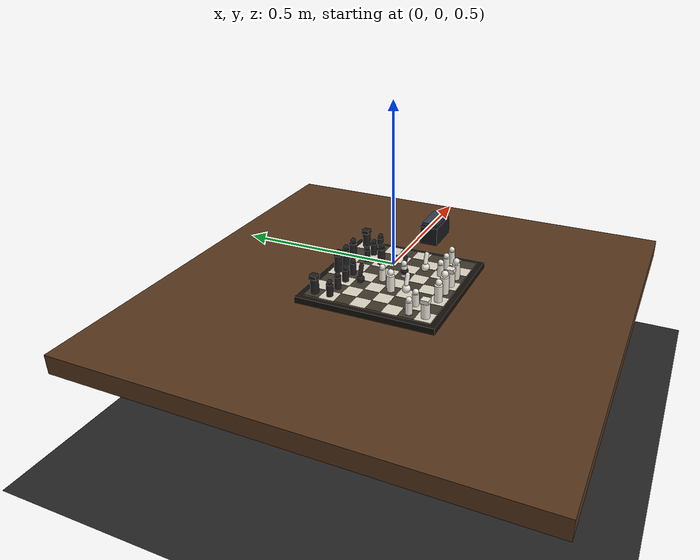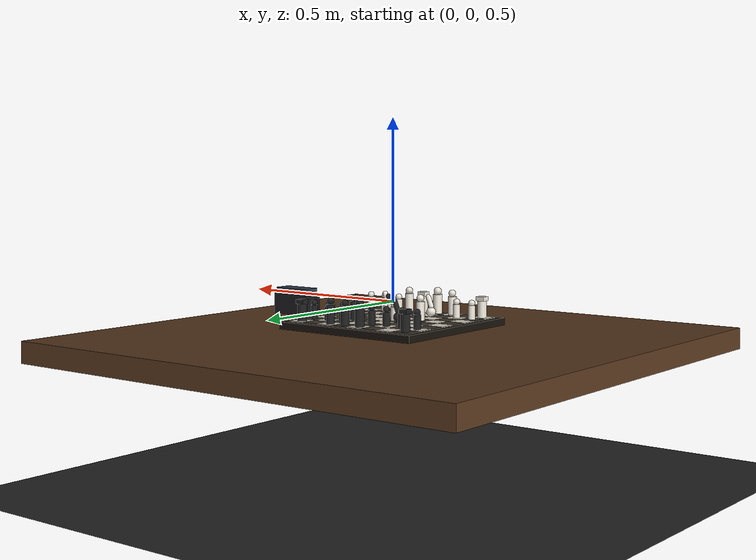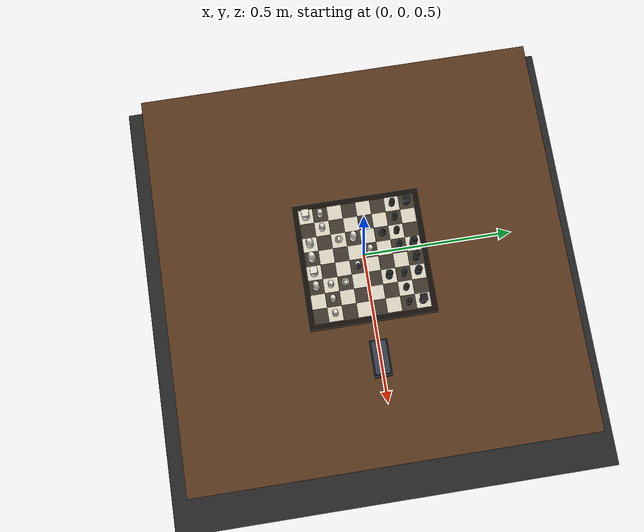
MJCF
<mujoco model="chess_playing_scene">
  <compiler angle="degree" coordinate="local"/>
  <option timestep="0.002" gravity="0 0 -9.81" integrator="RK4"/>

  <asset>
    <!-- No textures/materials per instructions -->
  </asset>

  <worldbody>
    <!-- Lighting -->
    <light name="key_light" pos="0 0 3" dir="0 0 -1" diffuse="0.9 0.9 0.9" specular="0.2 0.2 0.2"/>
    <light name="fill_light" pos="2 2 2" dir="-1 -1 -1" diffuse="0.4 0.4 0.4" specular="0.1 0.1 0.1"/>

    <!-- Table / ground plane -->
    <geom name="floor" type="plane" pos="0 0 0" size="5 5 0.1" rgba="0.15 0.15 0.15 1"/>
    <geom name="table" type="box" pos="0 0 0.38" size="0.7 0.7 0.03" rgba="0.35 0.22 0.12 1"/>

    <!-- Chessboard base -->
    <body name="board" pos="0 0 0.44">
      <geom name="board_base" type="box" pos="0 0 0" size="0.22 0.22 0.01" rgba="0.08 0.06 0.04 1"/>
      <!-- 8x8 squares (each square 0.05 x 0.05; board spans 0.4 x 0.4) -->
      <!-- Coordinates: a1 at (-0.175, -0.175), h8 at (0.175, 0.175) -->
      <!-- Light squares -->
      <geom name="sq_a1" type="box" pos="-0.175 -0.175 0.011" size="0.025 0.025 0.001" rgba="0.88 0.85 0.78 1"/>
      <geom name="sq_c1" type="box" pos="-0.075 -0.175 0.011" size="0.025 0.025 0.001" rgba="0.88 0.85 0.78 1"/>
      <geom name="sq_e1" type="box" pos="0.025 -0.175 0.011" size="0.025 0.025 0.001" rgba="0.88 0.85 0.78 1"/>
      <geom name="sq_g1" type="box" pos="0.125 -0.175 0.011" size="0.025 0.025 0.001" rgba="0.88 0.85 0.78 1"/>

      <geom name="sq_b2" type="box" pos="-0.125 -0.125 0.011" size="0.025 0.025 0.001" rgba="0.88 0.85 0.78 1"/>
      <geom name="sq_d2" type="box" pos="-0.025 -0.125 0.011" size="0.025 0.025 0.001" rgba="0.88 0.85 0.78 1"/>
      <geom name="sq_f2" type="box" pos="0.075 -0.125 0.011" size="0.025 0.025 0.001" rgba="0.88 0.85 0.78 1"/>
      <geom name="sq_h2" type="box" pos="0.175 -0.125 0.011" size="0.025 0.025 0.001" rgba="0.88 0.85 0.78 1"/>

      <geom name="sq_a3" type="box" pos="-0.175 -0.075 0.011" size="0.025 0.025 0.001" rgba="0.88 0.85 0.78 1"/>
      <geom name="sq_c3" type="box" pos="-0.075 -0.075 0.011" size="0.025 0.025 0.001" rgba="0.88 0.85 0.78 1"/>
      <geom name="sq_e3" type="box" pos="0.025 -0.075 0.011" size="0.025 0.025 0.001" rgba="0.88 0.85 0.78 1"/>
      <geom name="sq_g3" type="box" pos="0.125 -0.075 0.011" size="0.025 0.025 0.001" rgba="0.88 0.85 0.78 1"/>

      <geom name="sq_b4" type="box" pos="-0.125 -0.025 0.011" size="0.025 0.025 0.001" rgba="0.88 0.85 0.78 1"/>
      <geom name="sq_d4" type="box" pos="-0.025 -0.025 0.011" size="0.025 0.025 0.001" rgba="0.88 0.85 0.78 1"/>
      <geom name="sq_f4" type="box" pos="0.075 -0.025 0.011" size="0.025 0.025 0.001" rgba="0.88 0.85 0.78 1"/>
      <geom name="sq_h4" type="box" pos="0.175 -0.025 0.011" size="0.025 0.025 0.001" rgba="0.88 0.85 0.78 1"/>

      <geom name="sq_a5" type="box" pos="-0.175 0.025 0.011" size="0.025 0.025 0.001" rgba="0.88 0.85 0.78 1"/>
      <geom name="sq_c5" type="box" pos="-0.075 0.025 0.011" size="0.025 0.025 0.001" rgba="0.88 0.85 0.78 1"/>
      <geom name="sq_e5" type="box" pos="0.025 0.025 0.011" size="0.025 0.025 0.001" rgba="0.88 0.85 0.78 1"/>
      <geom name="sq_g5" type="box" pos="0.125 0.025 0.011" size="0.025 0.025 0.001" rgba="0.88 0.85 0.78 1"/>

      <geom name="sq_b6" type="box" pos="-0.125 0.075 0.011" size="0.025 0.025 0.001" rgba="0.88 0.85 0.78 1"/>
      <geom name="sq_d6" type="box" pos="-0.025 0.075 0.011" size="0.025 0.025 0.001" rgba="0.88 0.85 0.78 1"/>
      <geom name="sq_f6" type="box" pos="0.075 0.075 0.011" size="0.025 0.025 0.001" rgba="0.88 0.85 0.78 1"/>
      <geom name="sq_h6" type="box" pos="0.175 0.075 0.011" size="0.025 0.025 0.001" rgba="0.88 0.85 0.78 1"/>

      <geom name="sq_a7" type="box" pos="-0.175 0.125 0.011" size="0.025 0.025 0.001" rgba="0.88 0.85 0.78 1"/>
      <geom name="sq_c7" type="box" pos="-0.075 0.125 0.011" size="0.025 0.025 0.001" rgba="0.88 0.85 0.78 1"/>
      <geom name="sq_e7" type="box" pos="0.025 0.125 0.011" size="0.025 0.025 0.001" rgba="0.88 0.85 0.78 1"/>
      <geom name="sq_g7" type="box" pos="0.125 0.125 0.011" size="0.025 0.025 0.001" rgba="0.88 0.85 0.78 1"/>

      <geom name="sq_b8" type="box" pos="-0.125 0.175 0.011" size="0.025 0.025 0.001" rgba="0.88 0.85 0.78 1"/>
      <geom name="sq_d8" type="box" pos="-0.025 0.175 0.011" size="0.025 0.025 0.001" rgba="0.88 0.85 0.78 1"/>
      <geom name="sq_f8" type="box" pos="0.075 0.175 0.011" size="0.025 0.025 0.001" rgba="0.88 0.85 0.78 1"/>
      <geom name="sq_h8" type="box" pos="0.175 0.175 0.011" size="0.025 0.025 0.001" rgba="0.88 0.85 0.78 1"/>

      <!-- Dark squares -->
      <geom name="sq_b1" type="box" pos="-0.125 -0.175 0.011" size="0.025 0.025 0.001" rgba="0.25 0.22 0.18 1"/>
      <geom name="sq_d1" type="box" pos="-0.025 -0.175 0.011" size="0.025 0.025 0.001" rgba="0.25 0.22 0.18 1"/>
      <geom name="sq_f1" type="box" pos="0.075 -0.175 0.011" size="0.025 0.025 0.001" rgba="0.25 0.22 0.18 1"/>
      <geom name="sq_h1" type="box" pos="0.175 -0.175 0.011" size="0.025 0.025 0.001" rgba="0.25 0.22 0.18 1"/>

      <geom name="sq_a2" type="box" pos="-0.175 -0.125 0.011" size="0.025 0.025 0.001" rgba="0.25 0.22 0.18 1"/>
      <geom name="sq_c2" type="box" pos="-0.075 -0.125 0.011" size="0.025 0.025 0.001" rgba="0.25 0.22 0.18 1"/>
      <geom name="sq_e2" type="box" pos="0.025 -0.125 0.011" size="0.025 0.025 0.001" rgba="0.25 0.22 0.18 1"/>
      <geom name="sq_g2" type="box" pos="0.125 -0.125 0.011" size="0.025 0.025 0.001" rgba="0.25 0.22 0.18 1"/>

      <geom name="sq_b3" type="box" pos="-0.125 -0.075 0.011" size="0.025 0.025 0.001" rgba="0.25 0.22 0.18 1"/>
      <geom name="sq_d3" type="box" pos="-0.025 -0.075 0.011" size="0.025 0.025 0.001" rgba="0.25 0.22 0.18 1"/>
      <geom name="sq_f3" type="box" pos="0.075 -0.075 0.011" size="0.025 0.025 0.001" rgba="0.25 0.22 0.18 1"/>
      <geom name="sq_h3" type="box" pos="0.175 -0.075 0.011" size="0.025 0.025 0.001" rgba="0.25 0.22 0.18 1"/>

      <geom name="sq_a4" type="box" pos="-0.175 -0.025 0.011" size="0.025 0.025 0.001" rgba="0.25 0.22 0.18 1"/>
      <geom name="sq_c4" type="box" pos="-0.075 -0.025 0.011" size="0.025 0.025 0.001" rgba="0.25 0.22 0.18 1"/>
      <geom name="sq_e4" type="box" pos="0.025 -0.025 0.011" size="0.025 0.025 0.001" rgba="0.25 0.22 0.18 1"/>
      <geom name="sq_g4" type="box" pos="0.125 -0.025 0.011" size="0.025 0.025 0.001" rgba="0.25 0.22 0.18 1"/>

      <geom name="sq_b5" type="box" pos="-0.125 0.025 0.011" size="0.025 0.025 0.001" rgba="0.25 0.22 0.18 1"/>
      <geom name="sq_d5" type="box" pos="-0.025 0.025 0.011" size="0.025 0.025 0.001" rgba="0.25 0.22 0.18 1"/>
      <geom name="sq_f5" type="box" pos="0.075 0.025 0.011" size="0.025 0.025 0.001" rgba="0.25 0.22 0.18 1"/>
      <geom name="sq_h5" type="box" pos="0.175 0.025 0.011" size="0.025 0.025 0.001" rgba="0.25 0.22 0.18 1"/>

      <geom name="sq_a6" type="box" pos="-0.175 0.075 0.011" size="0.025 0.025 0.001" rgba="0.25 0.22 0.18 1"/>
      <geom name="sq_c6" type="box" pos="-0.075 0.075 0.011" size="0.025 0.025 0.001" rgba="0.25 0.22 0.18 1"/>
      <geom name="sq_e6" type="box" pos="0.025 0.075 0.011" size="0.025 0.025 0.001" rgba="0.25 0.22 0.18 1"/>
      <geom name="sq_g6" type="box" pos="0.125 0.075 0.011" size="0.025 0.025 0.001" rgba="0.25 0.22 0.18 1"/>

      <geom name="sq_b7" type="box" pos="-0.125 0.125 0.011" size="0.025 0.025 0.001" rgba="0.25 0.22 0.18 1"/>
      <geom name="sq_d7" type="box" pos="-0.025 0.125 0.011" size="0.025 0.025 0.001" rgba="0.25 0.22 0.18 1"/>
      <geom name="sq_f7" type="box" pos="0.075 0.125 0.011" size="0.025 0.025 0.001" rgba="0.25 0.22 0.18 1"/>
      <geom name="sq_h7" type="box" pos="0.175 0.125 0.011" size="0.025 0.025 0.001" rgba="0.25 0.22 0.18 1"/>

      <geom name="sq_a8" type="box" pos="-0.175 0.175 0.011" size="0.025 0.025 0.001" rgba="0.25 0.22 0.18 1"/>
      <geom name="sq_c8" type="box" pos="-0.075 0.175 0.011" size="0.025 0.025 0.001" rgba="0.25 0.22 0.18 1"/>
      <geom name="sq_e8" type="box" pos="0.025 0.175 0.011" size="0.025 0.025 0.001" rgba="0.25 0.22 0.18 1"/>
      <geom name="sq_g8" type="box" pos="0.125 0.175 0.011" size="0.025 0.025 0.001" rgba="0.25 0.22 0.18 1"/>
    </body>

    <!-- White pieces (ivory) -->
    <!-- King g1 -->
    <body name="w_king_g1" pos="0.075 -0.175 0.47">
      <freejoint name="w_king_g1_free"/>
      <geom type="cylinder" size="0.012 0.032" rgba="0.92 0.90 0.85 1"/>
      <geom type="sphere" pos="0 0 0.04" size="0.010" rgba="0.92 0.90 0.85 1"/>
    </body>

    <!-- Queen d1 -->
    <body name="w_queen_d1" pos="-0.025 -0.175 0.47">
      <freejoint name="w_queen_d1_free"/>
      <geom type="cylinder" size="0.013 0.036" rgba="0.92 0.90 0.85 1"/>
      <geom type="sphere" pos="0 0 0.045" size="0.011" rgba="0.92 0.90 0.85 1"/>
    </body>

    <!-- Rooks: a1 and e1 (rook from h1 to e1) -->
    <body name="w_rook_a1" pos="-0.175 -0.175 0.47">
      <freejoint name="w_rook_a1_free"/>
      <geom type="cylinder" size="0.013 0.028" rgba="0.92 0.90 0.85 1"/>
      <geom type="box" pos="0 0 0.034" size="0.012 0.012 0.006" rgba="0.92 0.90 0.85 1"/>
    </body>

    <body name="w_rook_e1" pos="0.025 -0.175 0.47">
      <freejoint name="w_rook_e1_free"/>
      <geom type="cylinder" size="0.013 0.028" rgba="0.92 0.90 0.85 1"/>
      <geom type="box" pos="0 0 0.034" size="0.012 0.012 0.006" rgba="0.92 0.90 0.85 1"/>
    </body>

    <!-- Bishops: c4 and c1 (f1 bishop captured) -->
    <body name="w_bishop_c4" pos="-0.075 -0.025 0.47">
      <freejoint name="w_bishop_c4_free"/>
      <geom type="cylinder" size="0.012 0.033" rgba="0.92 0.90 0.85 1"/>
      <geom type="sphere" pos="0 0 0.042" size="0.010" rgba="0.92 0.90 0.85 1"/>
    </body>

    <body name="w_bishop_c1" pos="-0.075 -0.175 0.47">
      <freejoint name="w_bishop_c1_free"/>
      <geom type="cylinder" size="0.012 0.033" rgba="0.92 0.90 0.85 1"/>
      <geom type="sphere" pos="0 0 0.042" size="0.010" rgba="0.92 0.90 0.85 1"/>
    </body>

    <!-- Knights: c3 and f3 -->
    <body name="w_knight_c3" pos="-0.075 -0.075 0.47">
      <freejoint name="w_knight_c3_free"/>
      <geom type="sphere" size="0.013" rgba="0.92 0.90 0.85 1"/>
      <geom type="capsule" fromto="0 0 0.015  0.010 0 0.040" size="0.007" rgba="0.92 0.90 0.85 1"/>
    </body>

    <body name="w_knight_f3" pos="0.075 -0.075 0.47">
      <freejoint name="w_knight_f3_free"/>
      <geom type="sphere" size="0.013" rgba="0.92 0.90 0.85 1"/>
      <geom type="capsule" fromto="0 0 0.015  0.010 0 0.040" size="0.007" rgba="0.92 0.90 0.85 1"/>
    </body>

    <!-- White pawns: a2 b2 d5 e4 f2 g2 h2 -->
    <body name="w_pawn_a2" pos="-0.175 -0.125 0.47">
      <freejoint name="w_pawn_a2_free"/>
      <geom type="cylinder" size="0.010 0.020" rgba="0.92 0.90 0.85 1"/>
      <geom type="sphere" pos="0 0 0.026" size="0.009" rgba="0.92 0.90 0.85 1"/>
    </body>
    <body name="w_pawn_b2" pos="-0.125 -0.125 0.47">
      <freejoint name="w_pawn_b2_free"/>
      <geom type="cylinder" size="0.010 0.020" rgba="0.92 0.90 0.85 1"/>
      <geom type="sphere" pos="0 0 0.026" size="0.009" rgba="0.92 0.90 0.85 1"/>
    </body>
    <body name="w_pawn_d5" pos="-0.025 0.025 0.47">
      <freejoint name="w_pawn_d5_free"/>
      <geom type="cylinder" size="0.010 0.020" rgba="0.92 0.90 0.85 1"/>
      <geom type="sphere" pos="0 0 0.026" size="0.009" rgba="0.92 0.90 0.85 1"/>
    </body>
    <body name="w_pawn_e4" pos="0.025 -0.025 0.47">
      <freejoint name="w_pawn_e4_free"/>
      <geom type="cylinder" size="0.010 0.020" rgba="0.92 0.90 0.85 1"/>
      <geom type="sphere" pos="0 0 0.026" size="0.009" rgba="0.92 0.90 0.85 1"/>
    </body>
    <body name="w_pawn_f2" pos="0.075 -0.125 0.47">
      <freejoint name="w_pawn_f2_free"/>
      <geom type="cylinder" size="0.010 0.020" rgba="0.92 0.90 0.85 1"/>
      <geom type="sphere" pos="0 0 0.026" size="0.009" rgba="0.92 0.90 0.85 1"/>
    </body>
    <body name="w_pawn_g2" pos="0.125 -0.125 0.47">
      <freejoint name="w_pawn_g2_free"/>
      <geom type="cylinder" size="0.010 0.020" rgba="0.92 0.90 0.85 1"/>
      <geom type="sphere" pos="0 0 0.026" size="0.009" rgba="0.92 0.90 0.85 1"/>
    </body>
    <body name="w_pawn_h2" pos="0.175 -0.125 0.47">
      <freejoint name="w_pawn_h2_free"/>
      <geom type="cylinder" size="0.010 0.020" rgba="0.92 0.90 0.85 1"/>
      <geom type="sphere" pos="0 0 0.026" size="0.009" rgba="0.92 0.90 0.85 1"/>
    </body>

    <!-- Black pieces (ebony) -->
    <!-- King e8 -->
    <body name="b_king_e8" pos="0.025 0.175 0.47">
      <freejoint name="b_king_e8_free"/>
      <geom type="cylinder" size="0.012 0.032" rgba="0.12 0.12 0.12 1"/>
      <geom type="sphere" pos="0 0 0.04" size="0.010" rgba="0.12 0.12 0.12 1"/>
    </body>

    <!-- Queen d8 -->
    <body name="b_queen_d8" pos="-0.025 0.175 0.47">
      <freejoint name="b_queen_d8_free"/>
      <geom type="cylinder" size="0.013 0.036" rgba="0.12 0.12 0.12 1"/>
      <geom type="sphere" pos="0 0 0.045" size="0.011" rgba="0.12 0.12 0.12 1"/>
    </body>

    <!-- Rooks: a8 and h8 -->
    <body name="b_rook_a8" pos="-0.175 0.175 0.47">
      <freejoint name="b_rook_a8_free"/>
      <geom type="cylinder" size="0.013 0.028" rgba="0.12 0.12 0.12 1"/>
      <geom type="box" pos="0 0 0.034" size="0.012 0.012 0.006" rgba="0.12 0.12 0.12 1"/>
    </body>

    <body name="b_rook_h8" pos="0.175 0.175 0.47">
      <freejoint name="b_rook_h8_free"/>
      <geom type="cylinder" size="0.013 0.028" rgba="0.12 0.12 0.12 1"/>
      <geom type="box" pos="0 0 0.034" size="0.012 0.012 0.006" rgba="0.12 0.12 0.12 1"/>
    </body>

    <!-- Bishops: f6 and f8 (c5 bishop captured) -->
    <body name="b_bishop_f6" pos="0.075 0.075 0.47">
      <freejoint name="b_bishop_f6_free"/>
      <geom type="cylinder" size="0.012 0.033" rgba="0.12 0.12 0.12 1"/>
      <geom type="sphere" pos="0 0 0.042" size="0.010" rgba="0.12 0.12 0.12 1"/>
    </body>

    <body name="b_bishop_f8" pos="0.075 0.175 0.47">
      <freejoint name="b_bishop_f8_free"/>
      <geom type="cylinder" size="0.012 0.033" rgba="0.12 0.12 0.12 1"/>
      <geom type="sphere" pos="0 0 0.042" size="0.010" rgba="0.12 0.12 0.12 1"/>
    </body>

    <!-- Knights: c6 and e4 -->
    <body name="b_knight_c6" pos="-0.075 0.075 0.47">
      <freejoint name="b_knight_c6_free"/>
      <geom type="sphere" size="0.013" rgba="0.12 0.12 0.12 1"/>
      <geom type="capsule" fromto="0 0 0.015  0.010 0 0.040" size="0.007" rgba="0.12 0.12 0.12 1"/>
    </body>

    <body name="b_knight_e4" pos="0.025 -0.025 0.47">
      <freejoint name="b_knight_e4_free"/>
      <geom type="sphere" size="0.013" rgba="0.12 0.12 0.12 1"/>
      <geom type="capsule" fromto="0 0 0.015  0.010 0 0.040" size="0.007" rgba="0.12 0.12 0.12 1"/>
    </body>

    <!-- Black pawns: a7 b7 c7 d7 f7 g7 h7 -->
    <body name="b_pawn_a7" pos="-0.175 0.125 0.47">
      <freejoint name="b_pawn_a7_free"/>
      <geom type="cylinder" size="0.010 0.020" rgba="0.12 0.12 0.12 1"/>
      <geom type="sphere" pos="0 0 0.026" size="0.009" rgba="0.12 0.12 0.12 1"/>
    </body>
    <body name="b_pawn_b7" pos="-0.125 0.125 0.47">
      <freejoint name="b_pawn_b7_free"/>
      <geom type="cylinder" size="0.010 0.020" rgba="0.12 0.12 0.12 1"/>
      <geom type="sphere" pos="0 0 0.026" size="0.009" rgba="0.12 0.12 0.12 1"/>
    </body>
    <body name="b_pawn_c7" pos="-0.075 0.125 0.47">
      <freejoint name="b_pawn_c7_free"/>
      <geom type="cylinder" size="0.010 0.020" rgba="0.12 0.12 0.12 1"/>
      <geom type="sphere" pos="0 0 0.026" size="0.009" rgba="0.12 0.12 0.12 1"/>
    </body>
    <body name="b_pawn_d7" pos="-0.025 0.125 0.47">
      <freejoint name="b_pawn_d7_free"/>
      <geom type="cylinder" size="0.010 0.020" rgba="0.12 0.12 0.12 1"/>
      <geom type="sphere" pos="0 0 0.026" size="0.009" rgba="0.12 0.12 0.12 1"/>
    </body>
    <body name="b_pawn_f7" pos="0.075 0.125 0.47">
      <freejoint name="b_pawn_f7_free"/>
      <geom type="cylinder" size="0.010 0.020" rgba="0.12 0.12 0.12 1"/>
      <geom type="sphere" pos="0 0 0.026" size="0.009" rgba="0.12 0.12 0.12 1"/>
    </body>
    <body name="b_pawn_g7" pos="0.125 0.125 0.47">
      <freejoint name="b_pawn_g7_free"/>
      <geom type="cylinder" size="0.010 0.020" rgba="0.12 0.12 0.12 1"/>
      <geom type="sphere" pos="0 0 0.026" size="0.009" rgba="0.12 0.12 0.12 1"/>
    </body>
    <body name="b_pawn_h7" pos="0.175 0.125 0.47">
      <freejoint name="b_pawn_h7_free"/>
      <geom type="cylinder" size="0.010 0.020" rgba="0.12 0.12 0.12 1"/>
      <geom type="sphere" pos="0 0 0.026" size="0.009" rgba="0.12 0.12 0.12 1"/>
    </body>

    <!-- A simple chess clock-like block (moving object with freejoint) -->
    <body name="clock" pos="0.35 0 0.47">
      <freejoint name="clock_free"/>
      <geom type="box" size="0.06 0.03 0.03" rgba="0.10 0.10 0.12 1"/>
      <geom type="box" pos="0 0 0.04" size="0.055 0.025 0.005" rgba="0.20 0.25 0.30 1"/>
    </body>

    <!-- Camera -->
    <camera name="main_cam" pos="0.9 -0.9 0.9" xyaxes="0.707 0.707 0  -0.408 0.408 0.816"/>
  </worldbody>
</mujoco>
